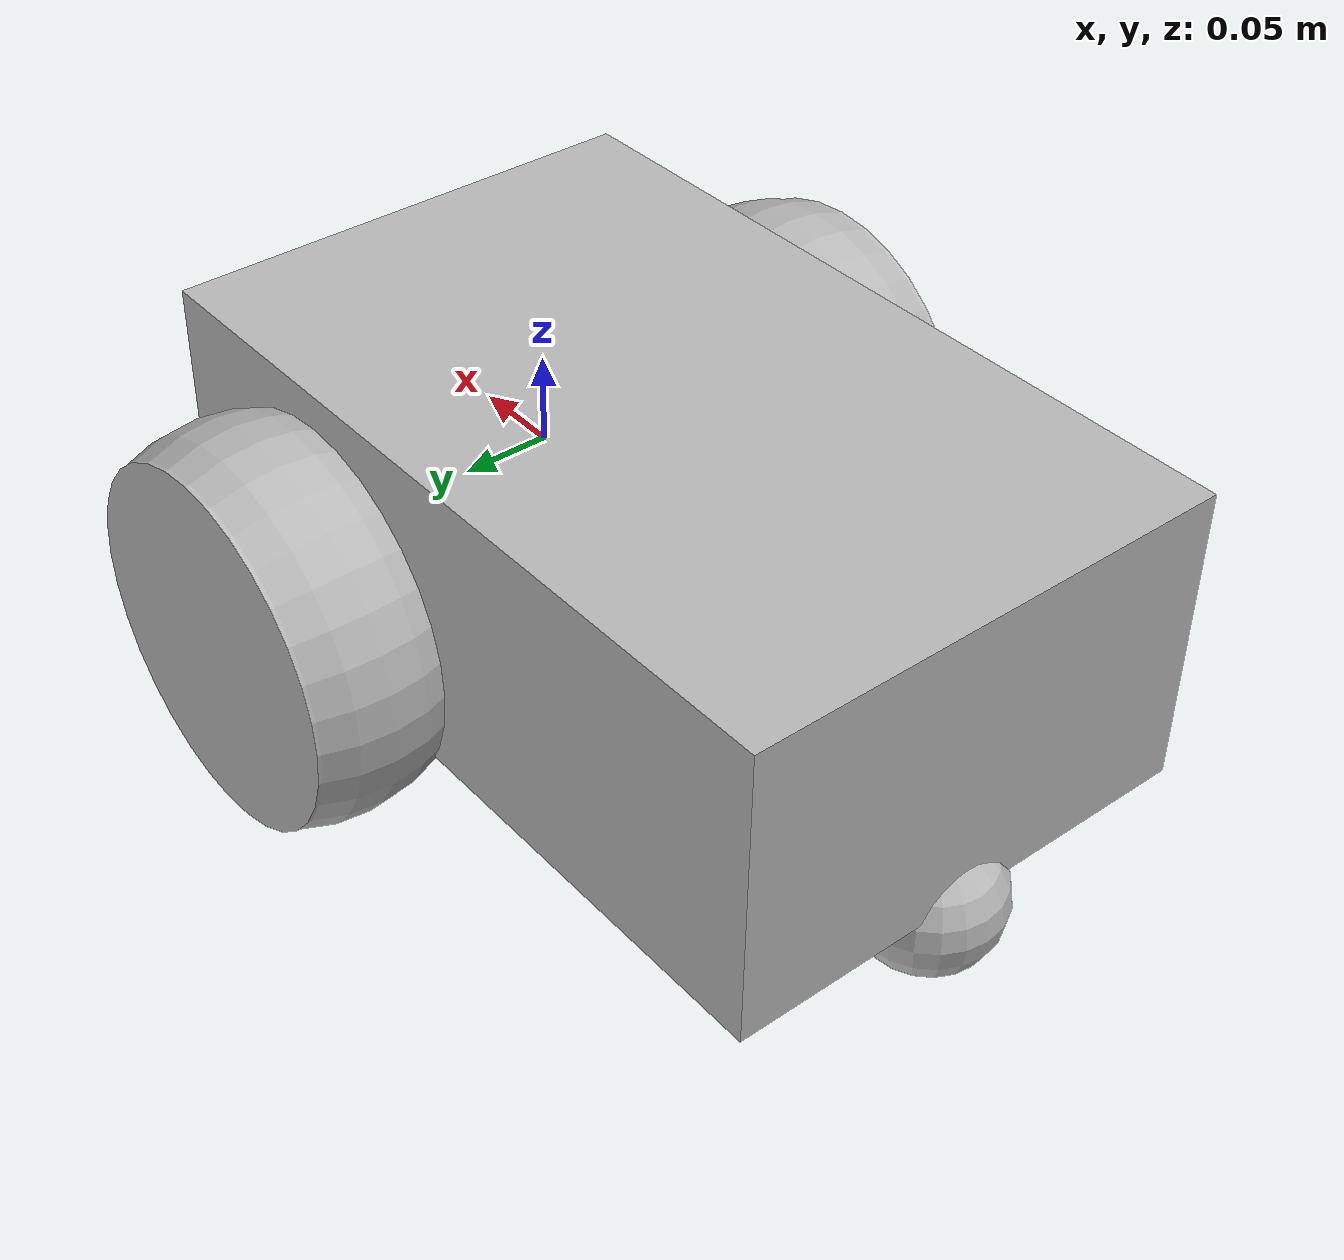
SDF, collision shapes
<?xml version="1.0"?>
<sdf version='1.7'>
  <model name='pioneer2dx'>
    <link name='base_link'>
      <inertial>
        <pose>-0.1 0 0 0 -0 0</pose>
        <mass>20</mass>
        <inertia>
          <ixx>0.176</ixx>
          <ixy>0</ixy>
          <ixz>0</ixz>
          <iyy>0.393</iyy>
          <iyz>0</iyz>
          <izz>0.473</izz>
        </inertia>
      </inertial>
      <collision name='base_link_fixed_joint_lump__chasis_collision_collision'>
        <pose>-0.1 0 0 0 -0 0</pose>
        <geometry>
          <box>
            <size>0.445 0.277 0.17</size>
          </box>
        </geometry>
      </collision>
      <collision name='base_link_fixed_joint_lump__castor_collision_collision_1'>
        <pose>-0.3 0 -0.1 0 -0 0</pose>
        <geometry>
          <sphere>
            <radius>0.04</radius>
          </sphere>
        </geometry>
      <surface>
        <friction>
          <ode>
            <mu>0.0</mu>
            <mu2>0.0</mu2>
            <slip1>0</slip1>
            <slip2>0</slip2>
            <maxVel>0.0</maxVel>
            <minDepth>0.001</minDepth>
          </ode>
        </friction>
      </surface>
      </collision>
      <visual name='base_link_fixed_joint_lump__chasis_visual_visual'>
        <pose>-0.1 0 0.04 0 -0 0</pose>
        <geometry>
          <mesh>
            <scale>1 1 1</scale>
            <uri>model://pioneer2dx/meshes/chassis.dae</uri>
          </mesh>
        </geometry>
      </visual>
      <visual name='base_link_fixed_joint_lump__castor_visual_visual_1'>
        <pose>-0.3 0 -0.1 0 -0 0</pose>
        <geometry>
          <sphere>
            <radius>0.04</radius>
          </sphere>
        </geometry>
      </visual>
    </link>
    <link name='left_wheel'>
      <pose relative_to='left_wheel_hinge'>0 0 0 0 -0 0</pose>
      <inertial>
        <pose>0 0 0 0 -0 0</pose>
        <mass>1.5</mass>
        <inertia>
          <ixx>0.00455</ixx>
          <ixy>0</ixy>
          <ixz>0</ixz>
          <iyy>0.0075</iyy>
          <iyz>0</iyz>
          <izz>0.00455</izz>
        </inertia>
      </inertial>
      <collision name='left_wheel_fixed_joint_lump__left_collision_collision'>
        <pose>0 0 0 0 -0 0</pose>
        <geometry>
          <mesh>
            <scale>1 1 1</scale>
            <uri>model://pioneer2dx/meshes/wheel_v5.dae</uri>
          </mesh>
        </geometry>
      <surface>
        <friction>
          <ode>
            <mu>1.0</mu>
            <mu2>1.0</mu2>
            <slip1>0</slip1>
            <slip2>0</slip2>
            <maxVel>0.0</maxVel>
            <minDepth>0.001</minDepth>
          </ode>
        </friction>
      </surface>
      </collision>
      <visual name='left_wheel_fixed_joint_lump__left_visual_visual'>
        <pose>0 0 0 0 -0 0</pose>
        <geometry>
          <mesh>
            <scale>1 1 1</scale>
            <uri>model://pioneer2dx/meshes/wheel_v5.dae</uri>
          </mesh>
        </geometry>
      </visual>
    </link>
    <joint name='left_wheel_hinge' type='revolute'>
      <pose relative_to='base_link'>0 0.17 -0.037 0 -0 0</pose>
      <parent>base_link</parent>
      <child>left_wheel</child>
      <axis>
        <xyz>0 1 0</xyz>
        <limit>
          <lower>-1e+16</lower>
	  <upper>1e+16</upper>
	  <velocity>0.2</velocity>
	  <effort>-1</effort>
        </limit>
        <dynamics>
          <spring_reference>0</spring_reference>
          <spring_stiffness>0</spring_stiffness>
        </dynamics>
	</axis>
	<physics>
	    <provide_feedback>True</provide_feedback>
	</physics>
    </joint>
    <joint name='right_wheel_hinge' type='revolute'>
      <pose relative_to='base_link'>0 -0.17 -0.037 0 -0 0</pose>
      <parent>base_link</parent>
      <child>right_wheel</child>
      <axis>
        <xyz>0 1 0</xyz>
        <limit>
          <lower>-1e+16</lower>
	  <upper>1e+16</upper>
	  <velocity>0.2</velocity>
	  <effort>-1</effort>
        </limit>
        <dynamics>
          <spring_reference>0</spring_reference>
          <spring_stiffness>0</spring_stiffness>
        </dynamics>
	</axis>
	<physics>
	    <provide_feedback>True</provide_feedback>
	</physics>
    </joint>
    <link name='right_wheel'>
      <pose relative_to='right_wheel_hinge'>0 0 0 0 -0 0</pose>
      <inertial>
        <pose>0 0 0 0 -0 0</pose>
        <mass>1.5</mass>
        <inertia>
          <ixx>0.00455</ixx>
          <ixy>0</ixy>
          <ixz>0</ixz>
          <iyy>0.0075</iyy>
          <iyz>0</iyz>
          <izz>0.00455</izz>
        </inertia>
      </inertial>
      <collision name='right_wheel_fixed_joint_lump__right_collision_collision'>
        <pose>0 0 0 0 -0 0</pose>
        <geometry>
          <mesh>
            <scale>1 1 1</scale>
            <uri>model://pioneer2dx/meshes/wheel_v5.dae</uri>
          </mesh>
        </geometry>
      <surface>
        <friction>
          <ode>
            <mu>1.0</mu>
            <mu2>1.0</mu2>
            <slip1>0</slip1>
            <slip2>0</slip2>
            <maxVel>0.0</maxVel>
            <minDepth>0.001</minDepth>
          </ode>
        </friction>
      </surface>
      </collision>
      <visual name='right_wheel_fixed_joint_lump__right_visual_visual'>
        <pose>0 0 0 0 -0 0</pose>
        <geometry>
          <mesh>
            <scale>1 1 1</scale>
            <uri>model://pioneer2dx/meshes/wheel_v5.dae</uri>
          </mesh>
        </geometry>
      </visual>
    </link>
    <static>0</static>
    <plugin name='gazebo_ros_control' filename='libgazebo_ros_control.so'/>
  </model>
</sdf>
